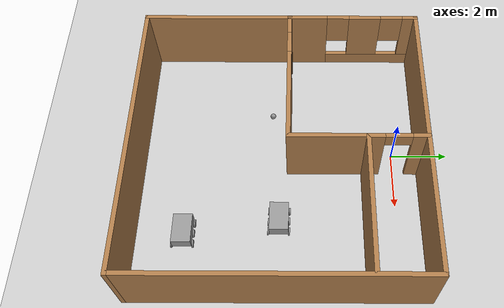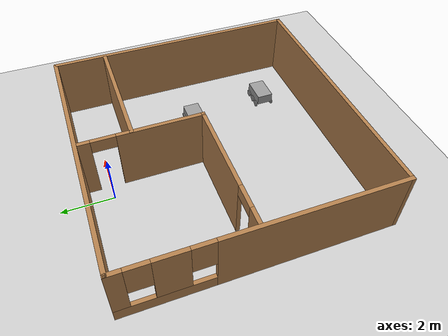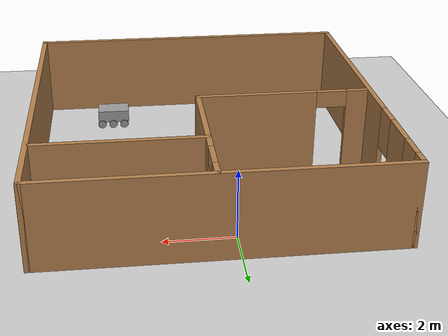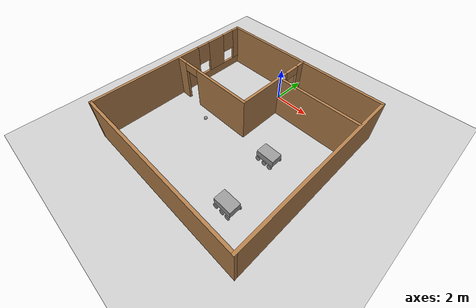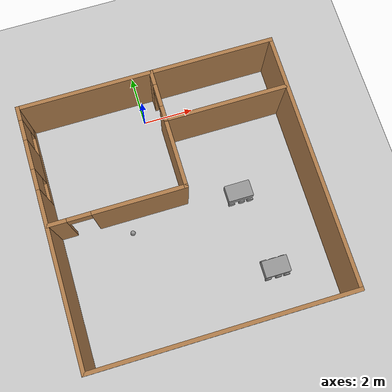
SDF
<sdf version="1.6">
 <world name="default">
  <plugin name="hello_world" filename="libhello_world.so"/>
  <light name="sun" type="directional">
   <pose>0 0 10 0 -0 0</pose>
   <diffuse>0.8 0.8 0.8 1</diffuse>
   <specular>0.2 0.2 0.2 1</specular>
   <attenuation>
    <range>1000</range>
    <constant>0.9</constant>
    <linear>0.01</linear>
    <quadratic>0.001</quadratic>
   </attenuation>
   <direction>-0.5 0.1 -0.9</direction>
  </light>
  <model name="ground_plane">
   <static>1</static>
   <link name="link">
    <collision name="collision">
     <geometry><plane><normal>0 0 1</normal><size>100 100</size></plane></geometry>
     <surface><friction><ode><mu>100</mu><mu2>50</mu2></ode></friction></surface>
    </collision>
    <visual name="visual">
     <cast_shadows>0</cast_shadows>
     <geometry><plane><normal>0 0 1</normal><size>100 100</size></plane></geometry>
     <material>
      <script><uri>file://media/materials/scripts/gazebo.material</uri><name>Gazebo/Grey</name></script>
     </material>
    </visual>
   </link>
  </model>
  <gravity>0 0 -9.8</gravity>
  <magnetic_field>6e-06 2.3e-05 -4.2e-05</magnetic_field>
  <atmosphere type="adiabatic"/>
  <physics name="default_physics" default="0" type="ode">
   <max_step_size>0.001</max_step_size>
   <real_time_factor>1</real_time_factor>
   <real_time_update_rate>1000</real_time_update_rate>
  </physics>
  <scene><ambient>0.4 0.4 0.4 1</ambient><background>0.7 0.7 0.7 1</background><shadows>1</shadows></scene>
  <spherical_coordinates>
   <surface_model>EARTH_WGS84</surface_model>
   <latitude_deg>0</latitude_deg>
   <longitude_deg>0</longitude_deg>
   <elevation>0</elevation>
   <heading_deg>0</heading_deg>
  </spherical_coordinates>
  <model name="Apt">
   <pose>0.449221 -4.00655 0 0 -0 0</pose>
   <link name="Wall_20">
    <collision name="Wall_20_Collision">
     <geometry><box><size>10 0.15 2.5</size></box></geometry>
     <pose>0 0 1.25 0 -0 0</pose>
    </collision>
    <visual name="Wall_20_Visual">
     <pose>0 0 1.25 0 -0 0</pose>
     <geometry><box><size>10 0.15 2.5</size></box></geometry>
     <material>
      <script><uri>file://media/materials/scripts/gazebo.material</uri><name>Gazebo/Wood</name></script>
      <ambient>1 1 1 1</ambient>
     </material>
     <meta><layer>0</layer></meta>
    </visual>
    <pose>0 4.925 0 0 -0 0</pose>
   </link>
   <link name="Wall_22">
    <collision name="Wall_22_Collision">
     <geometry><box><size>10 0.15 2.5</size></box></geometry>
     <pose>0 0 1.25 0 -0 0</pose>
    </collision>
    <visual name="Wall_22_Visual">
     <pose>0 0 1.25 0 -0 0</pose>
     <geometry><box><size>10 0.15 2.5</size></box></geometry>
     <material>
      <script><uri>file://media/materials/scripts/gazebo.material</uri><name>Gazebo/Wood</name></script>
      <ambient>1 1 1 1</ambient>
     </material>
     <meta><layer>0</layer></meta>
    </visual>
    <pose>4.925 0 0 0 0 -1.5708</pose>
   </link>
   <link name="Wall_23">
    <collision name="Wall_23_Collision">
     <geometry><box><size>10 0.15 2.5</size></box></geometry>
     <pose>0 0 1.25 0 -0 0</pose>
    </collision>
    <visual name="Wall_23_Visual">
     <pose>0 0 1.25 0 -0 0</pose>
     <geometry><box><size>10 0.15 2.5</size></box></geometry>
     <material>
      <script><uri>file://media/materials/scripts/gazebo.material</uri><name>Gazebo/Wood</name></script>
      <ambient>1 1 1 1</ambient>
     </material>
     <meta><layer>0</layer></meta>
    </visual>
    <pose>0 -4.925 0 0 -0 3.14159</pose>
   </link>
   <link name="Wall_24">
    <pose>-4.925 0 0 0 -0 1.5708</pose>
    <visual name="Wall_24_Visual_0">
     <pose>-1.65732 0 1.25 0 -0 0</pose>
     <geometry><box><size>6.68536 0.15 2.5</size></box></geometry>
     <material>
      <script><uri>file://media/materials/scripts/gazebo.material</uri><name>Gazebo/Wood</name></script>
      <ambient>1 1 1 1</ambient>
     </material>
     <meta><layer>0</layer></meta>
    </visual>
    <collision name="Wall_24_Collision_0">
     <geometry><box><size>6.68536 0.15 2.5</size></box></geometry>
     <pose>-1.65732 0 1.25 0 -0 0</pose>
    </collision>
    <visual name="Wall_24_Visual_1">
     <pose>3.34268 0 0.25 0 -0 0</pose>
     <geometry><box><size>3.31464 0.15 0.5</size></box></geometry>
     <material>
      <script><uri>file://media/materials/scripts/gazebo.material</uri><name>Gazebo/Wood</name></script>
      <ambient>1 1 1 1</ambient>
     </material>
     <meta><layer>0</layer></meta>
    </visual>
    <collision name="Wall_24_Collision_1">
     <geometry><box><size>3.31464 0.15 0.5</size></box></geometry>
     <pose>3.34268 0 0.25 0 -0 0</pose>
    </collision>
    <visual name="Wall_24_Visual_2">
     <pose>3.06322 0 1.5 0 -0 0</pose>
     <geometry><box><size>1.15572 0.15 2</size></box></geometry>
     <material>
      <script><uri>file://media/materials/scripts/gazebo.material</uri><name>Gazebo/Wood</name></script>
      <ambient>1 1 1 1</ambient>
     </material>
     <meta><layer>0</layer></meta>
    </visual>
    <collision name="Wall_24_Collision_2">
     <geometry><box><size>1.15572 0.15 2</size></box></geometry>
     <pose>3.06322 0 1.5 0 -0 0</pose>
    </collision>
    <visual name="Wall_24_Visual_3">
     <pose>4.72054 0 1.5 0 -0 0</pose>
     <geometry><box><size>0.558919 0.15 2</size></box></geometry>
     <material>
      <script><uri>file://media/materials/scripts/gazebo.material</uri><name>Gazebo/Wood</name></script>
      <ambient>1 1 1 1</ambient>
     </material>
     <meta><layer>0</layer></meta>
    </visual>
    <collision name="Wall_24_Collision_3">
     <geometry><box><size>0.558919 0.15 2</size></box></geometry>
     <pose>4.72054 0 1.5 0 -0 0</pose>
    </collision>
    <visual name="Wall_24_Visual_4">
     <pose>2.08536 0 1.9 0 -0 0</pose>
     <geometry><box><size>0.8 0.15 1.2</size></box></geometry>
     <material>
      <script><uri>file://media/materials/scripts/gazebo.material</uri><name>Gazebo/Wood</name></script>
      <ambient>1 1 1 1</ambient>
     </material>
     <meta><layer>0</layer></meta>
    </visual>
    <collision name="Wall_24_Collision_4">
     <geometry><box><size>0.8 0.15 1.2</size></box></geometry>
     <pose>2.08536 0 1.9 0 -0 0</pose>
    </collision>
    <visual name="Wall_24_Visual_5">
     <pose>4.04108 0 1.9 0 -0 0</pose>
     <geometry><box><size>0.8 0.15 1.2</size></box></geometry>
     <material>
      <script><uri>file://media/materials/scripts/gazebo.material</uri><name>Gazebo/Wood</name></script>
      <ambient>1 1 1 1</ambient>
     </material>
     <meta><layer>0</layer></meta>
    </visual>
    <collision name="Wall_24_Collision_5">
     <geometry><box><size>0.8 0.15 1.2</size></box></geometry>
     <pose>4.04108 0 1.9 0 -0 0</pose>
    </collision>
   </link>
   <link name="Wall_26">
    <pose>-2.34943 0.311558 0 0 -0 0</pose>
    <visual name="Wall_26_Visual_0">
     <pose>-2.24397 0 1.25 0 -0 0</pose>
     <geometry><box><size>0.76205 0.15 2.5</size></box></geometry>
     <material>
      <script><uri>file://media/materials/scripts/gazebo.material</uri><name>Gazebo/Wood</name></script>
      <ambient>1 1 1 1</ambient>
     </material>
     <meta><layer>0</layer></meta>
    </visual>
    <collision name="Wall_26_Collision_0">
     <geometry><box><size>0.76205 0.15 2.5</size></box></geometry>
     <pose>-2.24397 0 1.25 0 -0 0</pose>
    </collision>
    <visual name="Wall_26_Visual_1">
     <pose>0.831025 0 1.25 0 -0 0</pose>
     <geometry><box><size>3.58795 0.15 2.5</size></box></geometry>
     <material>
      <script><uri>file://media/materials/scripts/gazebo.material</uri><name>Gazebo/Wood</name></script>
      <ambient>1 1 1 1</ambient>
     </material>
     <meta><layer>0</layer></meta>
    </visual>
    <collision name="Wall_26_Collision_1">
     <geometry><box><size>3.58795 0.15 2.5</size></box></geometry>
     <pose>0.831025 0 1.25 0 -0 0</pose>
    </collision>
    <visual name="Wall_26_Visual_2">
     <pose>-1.41295 0 2.25 0 -0 0</pose>
     <geometry><box><size>0.9 0.15 0.5</size></box></geometry>
     <material>
      <script><uri>file://media/materials/scripts/gazebo.material</uri><name>Gazebo/Wood</name></script>
      <ambient>1 1 1 1</ambient>
     </material>
     <meta><layer>0</layer></meta>
    </visual>
    <collision name="Wall_26_Collision_2">
     <geometry><box><size>0.9 0.15 0.5</size></box></geometry>
     <pose>-1.41295 0 2.25 0 -0 0</pose>
    </collision>
   </link>
   <link name="Wall_27">
    <pose>0.200569 2.61156 0 0 -0 1.5708</pose>
    <visual name="Wall_27_Visual_0">
     <pose>-0.743221 0 1.25 0 -0 0</pose>
     <geometry><box><size>3.26356 0.15 2.5</size></box></geometry>
     <material>
      <script><uri>file://media/materials/scripts/gazebo.material</uri><name>Gazebo/Wood</name></script>
      <ambient>1 1 1 1</ambient>
     </material>
     <meta><layer>0</layer></meta>
    </visual>
    <collision name="Wall_27_Collision_0">
     <geometry><box><size>3.26356 0.15 2.5</size></box></geometry>
     <pose>-0.743221 0 1.25 0 -0 0</pose>
    </collision>
    <visual name="Wall_27_Visual_1">
     <pose>2.08178 0 1.25 0 -0 0</pose>
     <geometry><box><size>0.586441 0.15 2.5</size></box></geometry>
     <material>
      <script><uri>file://media/materials/scripts/gazebo.material</uri><name>Gazebo/Wood</name></script>
      <ambient>1 1 1 1</ambient>
     </material>
     <meta><layer>0</layer></meta>
    </visual>
    <collision name="Wall_27_Collision_1">
     <geometry><box><size>0.586441 0.15 2.5</size></box></geometry>
     <pose>2.08178 0 1.25 0 -0 0</pose>
    </collision>
    <visual name="Wall_27_Visual_2">
     <pose>1.33856 0 2.25 0 -0 0</pose>
     <geometry><box><size>0.9 0.15 0.5</size></box></geometry>
     <material>
      <script><uri>file://media/materials/scripts/gazebo.material</uri><name>Gazebo/Wood</name></script>
      <ambient>1 1 1 1</ambient>
     </material>
     <meta><layer>0</layer></meta>
    </visual>
    <collision name="Wall_27_Collision_2">
     <geometry><box><size>0.9 0.15 0.5</size></box></geometry>
     <pose>1.33856 0 2.25 0 -0 0</pose>
    </collision>
   </link>
   <link name="Wall_30">
    <collision name="Wall_30_Collision">
     <geometry><box><size>4.75 0.15 2.5</size></box></geometry>
     <pose>0 0 1.25 0 -0 0</pose>
    </collision>
    <visual name="Wall_30_Visual">
     <pose>0 0 1.25 0 -0 0</pose>
     <geometry><box><size>4.75 0.15 2.5</size></box></geometry>
     <material>
      <script><uri>file://media/materials/scripts/gazebo.material</uri><name>Gazebo/Wood</name></script>
      <ambient>1 1 1 1</ambient>
     </material>
     <meta><layer>0</layer></meta>
    </visual>
    <pose>2.51729 2.94951 0 0 -0 0</pose>
   </link>
   <static>1</static>
  </model>
  <light name="user_point_light_0" type="point">
   <pose>0.679796 -6.52012 1 0 -0 0</pose>
   <diffuse>0.5 0.5 0.5 1</diffuse>
   <specular>0.1 0.1 0.1 1</specular>
   <attenuation>
    <range>20</range>
    <constant>0.5</constant>
    <linear>0.01</linear>
    <quadratic>0.001</quadratic>
   </attenuation>
   <cast_shadows>0</cast_shadows>
   <direction>0 0 -1</direction>
  </light>
  <light name="user_point_light_1" type="point">
   <pose>-1.72336 -0.833367 1 0 -0 0</pose>
   <diffuse>0.5 0.5 0.5 1</diffuse>
   <specular>0.1 0.1 0.1 1</specular>
   <attenuation>
    <range>20</range>
    <constant>0.5</constant>
    <linear>0.01</linear>
    <quadratic>0.001</quadratic>
   </attenuation>
   <cast_shadows>0</cast_shadows>
   <direction>0 0 -1</direction>
  </light>
  <light name="user_point_light_2" type="point">
   <pose>-1.84917 -6.47045 1 0 -0 0</pose>
   <diffuse>0.5 0.5 0.5 1</diffuse>
   <specular>0.1 0.1 0.1 1</specular>
   <attenuation>
    <range>20</range>
    <constant>0.5</constant>
    <linear>0.01</linear>
    <quadratic>0.001</quadratic>
   </attenuation>
   <cast_shadows>0</cast_shadows>
   <direction>0 0 -1</direction>
  </light>
  <model name="unit_box">
   <link name="link">
    <pose>0.003005 -0.0022 0.213305 0 -0 0</pose>
    <inertial>
     <mass>1</mass>
     <inertia>
      <ixx>0.166667</ixx>
      <ixy>0</ixy>
      <ixz>0</ixz>
      <iyy>0.166667</iyy>
      <iyz>0</iyz>
      <izz>0.166667</izz>
     </inertia>
    </inertial>
    <kinematic>1</kinematic>
    <visual name="visual">
     <geometry><box><size>1 0.643539 0.38715</size></box></geometry>
     <material>
      <script><name>Gazebo/Grey</name><uri>file://media/materials/scripts/gazebo.material</uri></script>
      <ambient>0.3 0.3 0.3 1</ambient>
      <diffuse>0.7 0.7 0.7 1</diffuse>
      <specular>0.01 0.01 0.01 1</specular>
      <emissive>0 0 0 1</emissive>
      <shader type="vertex"><normal_map>__default__</normal_map></shader>
     </material>
    </visual>
    <collision name="collision">
     <geometry><box><size>1 0.643539 0.38715</size></box></geometry>
     <surface>
      <friction>
       <ode><mu>1</mu><mu2>1</mu2><fdir1>0 0 0</fdir1><slip1>0</slip1><slip2>0</slip2></ode>
       <torsional>
        <coefficient>1</coefficient>
        <patch_radius>0</patch_radius>
        <surface_radius>0</surface_radius>
        <use_patch_radius>1</use_patch_radius>
        <ode><slip>0</slip></ode>
       </torsional>
      </friction>
      <bounce><restitution_coefficient>0</restitution_coefficient><threshold>1e+06</threshold></bounce>
      <contact>
       <collide_without_contact>0</collide_without_contact>
       <collide_without_contact_bitmask>1</collide_without_contact_bitmask>
       <collide_bitmask>1</collide_bitmask>
       <ode>
        <soft_cfm>0</soft_cfm>
        <soft_erp>0.2</soft_erp>
        <kp>1e+13</kp>
        <kd>1</kd>
        <max_vel>0.01</max_vel>
        <min_depth>0</min_depth>
       </ode>
       <bullet>
        <split_impulse>1</split_impulse>
        <split_impulse_penetration_threshold>-0.01</split_impulse_penetration_threshold>
        <soft_cfm>0</soft_cfm>
        <soft_erp>0.2</soft_erp>
        <kp>1e+13</kp>
        <kd>1</kd>
       </bullet>
      </contact>
     </surface>
    </collision>
   </link>
   <link name="link_0">
    <pose>-0.365803 -0.352907 -0.058315 1.51855 -0 0</pose>
    <inertial>
     <mass>0.00343646</mass>
     <inertia>
      <ixx>1.61233e-05</ixx>
      <ixy>0</ixy>
      <ixz>0</ixz>
      <iyy>1.61233e-05</iyy>
      <iyz>0</iyz>
      <izz>3.09431e-05</izz>
     </inertia>
    </inertial>
    <visual name="visual">
     <geometry><cylinder><radius>0.134197</radius><length>0.0477179</length></cylinder></geometry>
     <material>
      <lighting>1</lighting>
      <script><uri>file://media/materials/scripts/gazebo.material</uri><name>Gazebo/Grey</name></script>
      <ambient>0.3 0.3 0.3 1</ambient>
      <diffuse>0.7 0.7 0.7 1</diffuse>
      <specular>0.01 0.01 0.01 1</specular>
      <emissive>0 0 0 1</emissive>
      <shader type="vertex"><normal_map>__default__</normal_map></shader>
     </material>
    </visual>
    <collision name="collision">
     <geometry><cylinder><radius>0.134197</radius><length>0.047718</length></cylinder></geometry>
     <surface>
      <friction>
       <ode><mu>1</mu><mu2>1</mu2><fdir1>0 0 0</fdir1><slip1>0</slip1><slip2>0</slip2></ode>
       <torsional>
        <coefficient>1</coefficient>
        <patch_radius>0</patch_radius>
        <surface_radius>0</surface_radius>
        <use_patch_radius>1</use_patch_radius>
        <ode><slip>0</slip></ode>
       </torsional>
      </friction>
      <bounce><restitution_coefficient>0</restitution_coefficient><threshold>1e+06</threshold></bounce>
      <contact>
       <collide_without_contact>0</collide_without_contact>
       <collide_without_contact_bitmask>1</collide_without_contact_bitmask>
       <collide_bitmask>1</collide_bitmask>
       <ode>
        <soft_cfm>0</soft_cfm>
        <soft_erp>0.2</soft_erp>
        <kp>1e+13</kp>
        <kd>1</kd>
        <max_vel>0.01</max_vel>
        <min_depth>0</min_depth>
       </ode>
       <bullet>
        <split_impulse>1</split_impulse>
        <split_impulse_penetration_threshold>-0.01</split_impulse_penetration_threshold>
        <soft_cfm>0</soft_cfm>
        <soft_erp>0.2</soft_erp>
        <kp>1e+13</kp>
        <kd>1</kd>
       </bullet>
      </contact>
     </surface>
    </collision>
   </link>
   <link name="link_0_clone">
    <pose>0.373944 -0.367216 -0.055993 1.51855 -0 0</pose>
    <inertial>
     <mass>0.00343646</mass>
     <inertia>
      <ixx>1.61233e-05</ixx>
      <ixy>0</ixy>
      <ixz>0</ixz>
      <iyy>1.61233e-05</iyy>
      <iyz>0</iyz>
      <izz>3.09431e-05</izz>
     </inertia>
    </inertial>
    <visual name="visual">
     <geometry><cylinder><radius>0.134197</radius><length>0.0477179</length></cylinder></geometry>
     <material>
      <lighting>1</lighting>
      <script><uri>file://media/materials/scripts/gazebo.material</uri><name>Gazebo/Grey</name></script>
      <ambient>0.3 0.3 0.3 1</ambient>
      <diffuse>0.7 0.7 0.7 1</diffuse>
      <specular>0.01 0.01 0.01 1</specular>
      <emissive>0 0 0 1</emissive>
      <shader type="vertex"><normal_map>__default__</normal_map></shader>
     </material>
    </visual>
    <collision name="collision">
     <geometry><cylinder><radius>0.134197</radius><length>0.047718</length></cylinder></geometry>
     <surface>
      <friction>
       <ode><mu>1</mu><mu2>1</mu2><fdir1>0 0 0</fdir1><slip1>0</slip1><slip2>0</slip2></ode>
       <torsional>
        <coefficient>1</coefficient>
        <patch_radius>0</patch_radius>
        <surface_radius>0</surface_radius>
        <use_patch_radius>1</use_patch_radius>
        <ode><slip>0</slip></ode>
       </torsional>
      </friction>
      <bounce><restitution_coefficient>0</restitution_coefficient><threshold>1e+06</threshold></bounce>
      <contact>
       <collide_without_contact>0</collide_without_contact>
       <collide_without_contact_bitmask>1</collide_without_contact_bitmask>
       <collide_bitmask>1</collide_bitmask>
       <ode>
        <soft_cfm>0</soft_cfm>
        <soft_erp>0.2</soft_erp>
        <kp>1e+13</kp>
        <kd>1</kd>
        <max_vel>0.01</max_vel>
        <min_depth>0</min_depth>
       </ode>
       <bullet>
        <split_impulse>1</split_impulse>
        <split_impulse_penetration_threshold>-0.01</split_impulse_penetration_threshold>
        <soft_cfm>0</soft_cfm>
        <soft_erp>0.2</soft_erp>
        <kp>1e+13</kp>
        <kd>1</kd>
       </bullet>
      </contact>
     </surface>
    </collision>
   </link>
   <link name="link_0_clone_0">
    <pose>0.040573 -0.361578 -0.056617 1.51855 -0 0</pose>
    <inertial>
     <mass>0.00343646</mass>
     <inertia>
      <ixx>1.61233e-05</ixx>
      <ixy>0</ixy>
      <ixz>0</ixz>
      <iyy>1.61233e-05</iyy>
      <iyz>0</iyz>
      <izz>3.09431e-05</izz>
     </inertia>
    </inertial>
    <visual name="visual">
     <geometry><cylinder><radius>0.134197</radius><length>0.0477179</length></cylinder></geometry>
     <material>
      <lighting>1</lighting>
      <script><uri>file://media/materials/scripts/gazebo.material</uri><name>Gazebo/Grey</name></script>
      <ambient>0.3 0.3 0.3 1</ambient>
      <diffuse>0.7 0.7 0.7 1</diffuse>
      <specular>0.01 0.01 0.01 1</specular>
      <emissive>0 0 0 1</emissive>
      <shader type="vertex"><normal_map>__default__</normal_map></shader>
     </material>
    </visual>
    <collision name="collision">
     <geometry><cylinder><radius>0.134197</radius><length>0.047718</length></cylinder></geometry>
     <surface>
      <friction>
       <ode><mu>1</mu><mu2>1</mu2><fdir1>0 0 0</fdir1><slip1>0</slip1><slip2>0</slip2></ode>
       <torsional>
        <coefficient>1</coefficient>
        <patch_radius>0</patch_radius>
        <surface_radius>0</surface_radius>
        <use_patch_radius>1</use_patch_radius>
        <ode><slip>0</slip></ode>
       </torsional>
      </friction>
      <bounce><restitution_coefficient>0</restitution_coefficient><threshold>1e+06</threshold></bounce>
      <contact>
       <collide_without_contact>0</collide_without_contact>
       <collide_without_contact_bitmask>1</collide_without_contact_bitmask>
       <collide_bitmask>1</collide_bitmask>
       <ode>
        <soft_cfm>0</soft_cfm>
        <soft_erp>0.2</soft_erp>
        <kp>1e+13</kp>
        <kd>1</kd>
        <max_vel>0.01</max_vel>
        <min_depth>0</min_depth>
       </ode>
       <bullet>
        <split_impulse>1</split_impulse>
        <split_impulse_penetration_threshold>-0.01</split_impulse_penetration_threshold>
        <soft_cfm>0</soft_cfm>
        <soft_erp>0.2</soft_erp>
        <kp>1e+13</kp>
        <kd>1</kd>
       </bullet>
      </contact>
     </surface>
    </collision>
   </link>
   <link name="link_0_clone_1">
    <pose>0.386175 0.338935 -0.037961 1.51855 -0 0</pose>
    <inertial>
     <mass>0.00343646</mass>
     <inertia>
      <ixx>1.61233e-05</ixx>
      <ixy>0</ixy>
      <ixz>0</ixz>
      <iyy>1.61233e-05</iyy>
      <iyz>0</iyz>
      <izz>3.09431e-05</izz>
     </inertia>
    </inertial>
    <visual name="visual">
     <geometry><cylinder><radius>0.134197</radius><length>0.0477179</length></cylinder></geometry>
     <material>
      <lighting>1</lighting>
      <script><uri>file://media/materials/scripts/gazebo.material</uri><name>Gazebo/Grey</name></script>
      <ambient>0.3 0.3 0.3 1</ambient>
      <diffuse>0.7 0.7 0.7 1</diffuse>
      <specular>0.01 0.01 0.01 1</specular>
      <emissive>0 0 0 1</emissive>
      <shader type="vertex"><normal_map>__default__</normal_map></shader>
     </material>
    </visual>
    <collision name="collision">
     <geometry><cylinder><radius>0.134197</radius><length>0.047718</length></cylinder></geometry>
     <surface>
      <friction>
       <ode><mu>1</mu><mu2>1</mu2><fdir1>0 0 0</fdir1><slip1>0</slip1><slip2>0</slip2></ode>
       <torsional>
        <coefficient>1</coefficient>
        <patch_radius>0</patch_radius>
        <surface_radius>0</surface_radius>
        <use_patch_radius>1</use_patch_radius>
        <ode><slip>0</slip></ode>
       </torsional>
      </friction>
      <bounce><restitution_coefficient>0</restitution_coefficient><threshold>1e+06</threshold></bounce>
      <contact>
       <collide_without_contact>0</collide_without_contact>
       <collide_without_contact_bitmask>1</collide_without_contact_bitmask>
       <collide_bitmask>1</collide_bitmask>
       <ode>
        <soft_cfm>0</soft_cfm>
        <soft_erp>0.2</soft_erp>
        <kp>1e+13</kp>
        <kd>1</kd>
        <max_vel>0.01</max_vel>
        <min_depth>0</min_depth>
       </ode>
       <bullet>
        <split_impulse>1</split_impulse>
        <split_impulse_penetration_threshold>-0.01</split_impulse_penetration_threshold>
        <soft_cfm>0</soft_cfm>
        <soft_erp>0.2</soft_erp>
        <kp>1e+13</kp>
        <kd>1</kd>
       </bullet>
      </contact>
     </surface>
    </collision>
   </link>
   <link name="link_0_clone_2">
    <pose>0.020372 0.338679 -0.042863 1.51855 -0 0</pose>
    <inertial>
     <mass>0.00343646</mass>
     <inertia>
      <ixx>1.61233e-05</ixx>
      <ixy>0</ixy>
      <ixz>0</ixz>
      <iyy>1.61233e-05</iyy>
      <iyz>0</iyz>
      <izz>3.09431e-05</izz>
     </inertia>
    </inertial>
    <visual name="visual">
     <geometry><cylinder><radius>0.134197</radius><length>0.0477179</length></cylinder></geometry>
     <material>
      <lighting>1</lighting>
      <script><uri>file://media/materials/scripts/gazebo.material</uri><name>Gazebo/Grey</name></script>
      <ambient>0.3 0.3 0.3 1</ambient>
      <diffuse>0.7 0.7 0.7 1</diffuse>
      <specular>0.01 0.01 0.01 1</specular>
      <emissive>0 0 0 1</emissive>
      <shader type="vertex"><normal_map>__default__</normal_map></shader>
     </material>
    </visual>
    <collision name="collision">
     <geometry><cylinder><radius>0.134197</radius><length>0.047718</length></cylinder></geometry>
     <surface>
      <friction>
       <ode><mu>1</mu><mu2>1</mu2><fdir1>0 0 0</fdir1><slip1>0</slip1><slip2>0</slip2></ode>
       <torsional>
        <coefficient>1</coefficient>
        <patch_radius>0</patch_radius>
        <surface_radius>0</surface_radius>
        <use_patch_radius>1</use_patch_radius>
        <ode><slip>0</slip></ode>
       </torsional>
      </friction>
      <bounce><restitution_coefficient>0</restitution_coefficient><threshold>1e+06</threshold></bounce>
      <contact>
       <collide_without_contact>0</collide_without_contact>
       <collide_without_contact_bitmask>1</collide_without_contact_bitmask>
       <collide_bitmask>1</collide_bitmask>
       <ode>
        <soft_cfm>0</soft_cfm>
        <soft_erp>0.2</soft_erp>
        <kp>1e+13</kp>
        <kd>1</kd>
        <max_vel>0.01</max_vel>
        <min_depth>0</min_depth>
       </ode>
       <bullet>
        <split_impulse>1</split_impulse>
        <split_impulse_penetration_threshold>-0.01</split_impulse_penetration_threshold>
        <soft_cfm>0</soft_cfm>
        <soft_erp>0.2</soft_erp>
        <kp>1e+13</kp>
        <kd>1</kd>
       </bullet>
      </contact>
     </surface>
    </collision>
   </link>
   <link name="link_0_clone_3">
    <pose>-0.340099 0.35048 -0.038427 1.51855 -0 0</pose>
    <inertial>
     <mass>0.00343646</mass>
     <inertia>
      <ixx>1.61233e-05</ixx>
      <ixy>0</ixy>
      <ixz>0</ixz>
      <iyy>1.61233e-05</iyy>
      <iyz>0</iyz>
      <izz>3.09431e-05</izz>
     </inertia>
    </inertial>
    <visual name="visual">
     <geometry><cylinder><radius>0.134197</radius><length>0.0477179</length></cylinder></geometry>
     <material>
      <lighting>1</lighting>
      <script><uri>file://media/materials/scripts/gazebo.material</uri><name>Gazebo/Grey</name></script>
      <ambient>0.3 0.3 0.3 1</ambient>
      <diffuse>0.7 0.7 0.7 1</diffuse>
      <specular>0.01 0.01 0.01 1</specular>
      <emissive>0 0 0 1</emissive>
      <shader type="vertex"><normal_map>__default__</normal_map></shader>
     </material>
    </visual>
    <collision name="collision">
     <geometry><cylinder><radius>0.134197</radius><length>0.047718</length></cylinder></geometry>
     <surface>
      <friction>
       <ode><mu>1</mu><mu2>1</mu2><fdir1>0 0 0</fdir1><slip1>0</slip1><slip2>0</slip2></ode>
       <torsional>
        <coefficient>1</coefficient>
        <patch_radius>0</patch_radius>
        <surface_radius>0</surface_radius>
        <use_patch_radius>1</use_patch_radius>
        <ode><slip>0</slip></ode>
       </torsional>
      </friction>
      <bounce><restitution_coefficient>0</restitution_coefficient><threshold>1e+06</threshold></bounce>
      <contact>
       <collide_without_contact>0</collide_without_contact>
       <collide_without_contact_bitmask>1</collide_without_contact_bitmask>
       <collide_bitmask>1</collide_bitmask>
       <ode>
        <soft_cfm>0</soft_cfm>
        <soft_erp>0.2</soft_erp>
        <kp>1e+13</kp>
        <kd>1</kd>
        <max_vel>0.01</max_vel>
        <min_depth>0</min_depth>
       </ode>
       <bullet>
        <split_impulse>1</split_impulse>
        <split_impulse_penetration_threshold>-0.01</split_impulse_penetration_threshold>
        <soft_cfm>0</soft_cfm>
        <soft_erp>0.2</soft_erp>
        <kp>1e+13</kp>
        <kd>1</kd>
       </bullet>
      </contact>
     </surface>
    </collision>
   </link>
   <joint name="link_JOINT_0" type="revolute">
    <parent>link</parent>
    <child>link_0</child>
    <pose>0 0 0.33 0 -0 0</pose>
    <axis>
     <xyz>0 0 -0.5</xyz>
     <use_parent_model_frame>0</use_parent_model_frame>
     <limit>
      <lower>-1.79769e+308</lower>
      <upper>1.79769e+308</upper>
      <effort>-1</effort>
      <velocity>-1</velocity>
     </limit>
     <dynamics>
      <spring_reference>0</spring_reference>
      <spring_stiffness>0</spring_stiffness>
      <damping>0</damping>
      <friction>0</friction>
     </dynamics>
    </axis>
    <physics>
     <ode><limit><cfm>0</cfm><erp>0.2</erp></limit><suspension><cfm>0</cfm><erp>0.2</erp></suspension></ode>
    </physics>
   </joint>
   <joint name="link_JOINT_1" type="revolute">
    <parent>link</parent>
    <child>link_0_clone</child>
    <axis>
     <xyz>0 0 -1</xyz>
     <use_parent_model_frame>0</use_parent_model_frame>
     <limit>
      <lower>-1.79769e+308</lower>
      <upper>1.79769e+308</upper>
      <effort>-1</effort>
      <velocity>-1</velocity>
     </limit>
     <dynamics>
      <spring_reference>0</spring_reference>
      <spring_stiffness>0</spring_stiffness>
      <damping>0</damping>
      <friction>0</friction>
     </dynamics>
    </axis>
    <physics>
     <ode><limit><cfm>0</cfm><erp>0.2</erp></limit><suspension><cfm>0</cfm><erp>0.2</erp></suspension></ode>
    </physics>
   </joint>
   <joint name="link_JOINT_2" type="revolute">
    <parent>link</parent>
    <child>link_0_clone_0</child>
    <axis>
     <xyz>0 0 -1</xyz>
     <use_parent_model_frame>0</use_parent_model_frame>
     <limit>
      <lower>-1.79769e+308</lower>
      <upper>1.79769e+308</upper>
      <effort>-1</effort>
      <velocity>-1</velocity>
     </limit>
     <dynamics>
      <spring_reference>0</spring_reference>
      <spring_stiffness>0</spring_stiffness>
      <damping>0</damping>
      <friction>0</friction>
     </dynamics>
    </axis>
    <physics>
     <ode><limit><cfm>0</cfm><erp>0.2</erp></limit><suspension><cfm>0</cfm><erp>0.2</erp></suspension></ode>
    </physics>
   </joint>
   <joint name="link_JOINT_3" type="revolute">
    <parent>link</parent>
    <child>link_0_clone_1</child>
    <axis>
     <xyz>0 0 1</xyz>
     <use_parent_model_frame>0</use_parent_model_frame>
     <limit>
      <lower>-1.79769e+308</lower>
      <upper>1.79769e+308</upper>
      <effort>-1</effort>
      <velocity>-1</velocity>
     </limit>
     <dynamics>
      <spring_reference>0</spring_reference>
      <spring_stiffness>0</spring_stiffness>
      <damping>0</damping>
      <friction>0</friction>
     </dynamics>
    </axis>
    <physics>
     <ode><limit><cfm>0</cfm><erp>0.2</erp></limit><suspension><cfm>0</cfm><erp>0.2</erp></suspension></ode>
    </physics>
   </joint>
   <joint name="link_JOINT_4" type="revolute">
    <parent>link</parent>
    <child>link_0_clone_2</child>
    <axis>
     <xyz>0 0 -1</xyz>
     <use_parent_model_frame>0</use_parent_model_frame>
     <limit>
      <lower>-1.79769e+308</lower>
      <upper>1.79769e+308</upper>
      <effort>-1</effort>
      <velocity>-1</velocity>
     </limit>
     <dynamics>
      <spring_reference>0</spring_reference>
      <spring_stiffness>0</spring_stiffness>
      <damping>0</damping>
      <friction>0</friction>
     </dynamics>
    </axis>
    <physics>
     <ode><limit><cfm>0</cfm><erp>0.2</erp></limit><suspension><cfm>0</cfm><erp>0.2</erp></suspension></ode>
    </physics>
   </joint>
   <joint name="link_JOINT_5" type="revolute">
    <parent>link</parent>
    <child>link_0_clone_3</child>
    <axis>
     <xyz>0 0 1</xyz>
     <use_parent_model_frame>0</use_parent_model_frame>
     <limit>
      <lower>-1.79769e+308</lower>
      <upper>1.79769e+308</upper>
      <effort>-1</effort>
      <velocity>-1</velocity>
     </limit>
     <dynamics>
      <spring_reference>0</spring_reference>
      <spring_stiffness>0</spring_stiffness>
      <damping>0</damping>
      <friction>0</friction>
     </dynamics>
    </axis>
    <physics>
     <ode><limit><cfm>0</cfm><erp>0.2</erp></limit><suspension><cfm>0</cfm><erp>0.2</erp></suspension></ode>
    </physics>
   </joint>
   <static>0</static>
   <pose>2.69801 -3.99846 0.311659 0 -0 0</pose>
  </model>
  <model name="unit_box_clone">
   <link name="link">
    <pose>0.003005 -0.0022 0.213305 0 -0 0</pose>
    <inertial>
     <mass>1</mass>
     <inertia>
      <ixx>0.166667</ixx>
      <ixy>0</ixy>
      <ixz>0</ixz>
      <iyy>0.166667</iyy>
      <iyz>0</iyz>
      <izz>0.166667</izz>
     </inertia>
    </inertial>
    <kinematic>1</kinematic>
    <visual name="visual">
     <geometry><box><size>1 0.643539 0.38715</size></box></geometry>
     <material>
      <script><name>Gazebo/Grey</name><uri>file://media/materials/scripts/gazebo.material</uri></script>
      <ambient>0.3 0.3 0.3 1</ambient>
      <diffuse>0.7 0.7 0.7 1</diffuse>
      <specular>0.01 0.01 0.01 1</specular>
      <emissive>0 0 0 1</emissive>
      <shader type="vertex"><normal_map>__default__</normal_map></shader>
     </material>
    </visual>
    <collision name="collision">
     <geometry><box><size>1 0.643539 0.38715</size></box></geometry>
     <surface>
      <friction>
       <ode><mu>1</mu><mu2>1</mu2><fdir1>0 0 0</fdir1><slip1>0</slip1><slip2>0</slip2></ode>
       <torsional>
        <coefficient>1</coefficient>
        <patch_radius>0</patch_radius>
        <surface_radius>0</surface_radius>
        <use_patch_radius>1</use_patch_radius>
        <ode><slip>0</slip></ode>
       </torsional>
      </friction>
      <bounce><restitution_coefficient>0</restitution_coefficient><threshold>1e+06</threshold></bounce>
      <contact>
       <collide_without_contact>0</collide_without_contact>
       <collide_without_contact_bitmask>1</collide_without_contact_bitmask>
       <collide_bitmask>1</collide_bitmask>
       <ode>
        <soft_cfm>0</soft_cfm>
        <soft_erp>0.2</soft_erp>
        <kp>1e+13</kp>
        <kd>1</kd>
        <max_vel>0.01</max_vel>
        <min_depth>0</min_depth>
       </ode>
       <bullet>
        <split_impulse>1</split_impulse>
        <split_impulse_penetration_threshold>-0.01</split_impulse_penetration_threshold>
        <soft_cfm>0</soft_cfm>
        <soft_erp>0.2</soft_erp>
        <kp>1e+13</kp>
        <kd>1</kd>
       </bullet>
      </contact>
     </surface>
    </collision>
   </link>
   <link name="link_0">
    <pose>-0.365803 -0.352907 -0.058315 1.51855 -0 0</pose>
    <inertial>
     <mass>0.00343646</mass>
     <inertia>
      <ixx>1.61233e-05</ixx>
      <ixy>0</ixy>
      <ixz>0</ixz>
      <iyy>1.61233e-05</iyy>
      <iyz>0</iyz>
      <izz>3.09431e-05</izz>
     </inertia>
    </inertial>
    <visual name="visual">
     <geometry><cylinder><radius>0.134197</radius><length>0.0477179</length></cylinder></geometry>
     <material>
      <lighting>1</lighting>
      <script><uri>file://media/materials/scripts/gazebo.material</uri><name>Gazebo/Grey</name></script>
      <ambient>0.3 0.3 0.3 1</ambient>
      <diffuse>0.7 0.7 0.7 1</diffuse>
      <specular>0.01 0.01 0.01 1</specular>
      <emissive>0 0 0 1</emissive>
      <shader type="vertex"><normal_map>__default__</normal_map></shader>
     </material>
    </visual>
    <collision name="collision">
     <geometry><cylinder><radius>0.134197</radius><length>0.047718</length></cylinder></geometry>
     <surface>
      <friction>
       <ode><mu>1</mu><mu2>1</mu2><fdir1>0 0 0</fdir1><slip1>0</slip1><slip2>0</slip2></ode>
       <torsional>
        <coefficient>1</coefficient>
        <patch_radius>0</patch_radius>
        <surface_radius>0</surface_radius>
        <use_patch_radius>1</use_patch_radius>
        <ode><slip>0</slip></ode>
       </torsional>
      </friction>
      <bounce><restitution_coefficient>0</restitution_coefficient><threshold>1e+06</threshold></bounce>
      <contact>
       <collide_without_contact>0</collide_without_contact>
       <collide_without_contact_bitmask>1</collide_without_contact_bitmask>
       <collide_bitmask>1</collide_bitmask>
       <ode>
        <soft_cfm>0</soft_cfm>
        <soft_erp>0.2</soft_erp>
        <kp>1e+13</kp>
        <kd>1</kd>
        <max_vel>0.01</max_vel>
        <min_depth>0</min_depth>
       </ode>
       <bullet>
        <split_impulse>1</split_impulse>
        <split_impulse_penetration_threshold>-0.01</split_impulse_penetration_threshold>
        <soft_cfm>0</soft_cfm>
        <soft_erp>0.2</soft_erp>
        <kp>1e+13</kp>
        <kd>1</kd>
       </bullet>
      </contact>
     </surface>
    </collision>
   </link>
   <link name="link_0_clone">
    <pose>0.373944 -0.367216 -0.055993 1.51855 -0 0</pose>
    <inertial>
     <mass>0.00343646</mass>
     <inertia>
      <ixx>1.61233e-05</ixx>
      <ixy>0</ixy>
      <ixz>0</ixz>
      <iyy>1.61233e-05</iyy>
      <iyz>0</iyz>
      <izz>3.09431e-05</izz>
     </inertia>
    </inertial>
    <visual name="visual">
     <geometry><cylinder><radius>0.134197</radius><length>0.0477179</length></cylinder></geometry>
     <material>
      <lighting>1</lighting>
      <script><uri>file://media/materials/scripts/gazebo.material</uri><name>Gazebo/Grey</name></script>
      <ambient>0.3 0.3 0.3 1</ambient>
      <diffuse>0.7 0.7 0.7 1</diffuse>
      <specular>0.01 0.01 0.01 1</specular>
      <emissive>0 0 0 1</emissive>
      <shader type="vertex"><normal_map>__default__</normal_map></shader>
     </material>
    </visual>
    <collision name="collision">
     <geometry><cylinder><radius>0.134197</radius><length>0.047718</length></cylinder></geometry>
     <surface>
      <friction>
       <ode><mu>1</mu><mu2>1</mu2><fdir1>0 0 0</fdir1><slip1>0</slip1><slip2>0</slip2></ode>
       <torsional>
        <coefficient>1</coefficient>
        <patch_radius>0</patch_radius>
        <surface_radius>0</surface_radius>
        <use_patch_radius>1</use_patch_radius>
        <ode><slip>0</slip></ode>
       </torsional>
      </friction>
      <bounce><restitution_coefficient>0</restitution_coefficient><threshold>1e+06</threshold></bounce>
      <contact>
       <collide_without_contact>0</collide_without_contact>
       <collide_without_contact_bitmask>1</collide_without_contact_bitmask>
       <collide_bitmask>1</collide_bitmask>
       <ode>
        <soft_cfm>0</soft_cfm>
        <soft_erp>0.2</soft_erp>
        <kp>1e+13</kp>
        <kd>1</kd>
        <max_vel>0.01</max_vel>
        <min_depth>0</min_depth>
       </ode>
       <bullet>
        <split_impulse>1</split_impulse>
        <split_impulse_penetration_threshold>-0.01</split_impulse_penetration_threshold>
        <soft_cfm>0</soft_cfm>
        <soft_erp>0.2</soft_erp>
        <kp>1e+13</kp>
        <kd>1</kd>
       </bullet>
      </contact>
     </surface>
    </collision>
   </link>
   <link name="link_0_clone_0">
    <pose>0.040573 -0.361578 -0.056617 1.51855 -0 0</pose>
    <inertial>
     <mass>0.00343646</mass>
     <inertia>
      <ixx>1.61233e-05</ixx>
      <ixy>0</ixy>
      <ixz>0</ixz>
      <iyy>1.61233e-05</iyy>
      <iyz>0</iyz>
      <izz>3.09431e-05</izz>
     </inertia>
    </inertial>
    <visual name="visual">
     <geometry><cylinder><radius>0.134197</radius><length>0.0477179</length></cylinder></geometry>
     <material>
      <lighting>1</lighting>
      <script><uri>file://media/materials/scripts/gazebo.material</uri><name>Gazebo/Grey</name></script>
      <ambient>0.3 0.3 0.3 1</ambient>
      <diffuse>0.7 0.7 0.7 1</diffuse>
      <specular>0.01 0.01 0.01 1</specular>
      <emissive>0 0 0 1</emissive>
      <shader type="vertex"><normal_map>__default__</normal_map></shader>
     </material>
    </visual>
    <collision name="collision">
     <geometry><cylinder><radius>0.134197</radius><length>0.047718</length></cylinder></geometry>
     <surface>
      <friction>
       <ode><mu>1</mu><mu2>1</mu2><fdir1>0 0 0</fdir1><slip1>0</slip1><slip2>0</slip2></ode>
       <torsional>
        <coefficient>1</coefficient>
        <patch_radius>0</patch_radius>
        <surface_radius>0</surface_radius>
        <use_patch_radius>1</use_patch_radius>
        <ode><slip>0</slip></ode>
       </torsional>
      </friction>
      <bounce><restitution_coefficient>0</restitution_coefficient><threshold>1e+06</threshold></bounce>
      <contact>
       <collide_without_contact>0</collide_without_contact>
       <collide_without_contact_bitmask>1</collide_without_contact_bitmask>
       <collide_bitmask>1</collide_bitmask>
       <ode>
        <soft_cfm>0</soft_cfm>
        <soft_erp>0.2</soft_erp>
        <kp>1e+13</kp>
        <kd>1</kd>
        <max_vel>0.01</max_vel>
        <min_depth>0</min_depth>
       </ode>
       <bullet>
        <split_impulse>1</split_impulse>
        <split_impulse_penetration_threshold>-0.01</split_impulse_penetration_threshold>
        <soft_cfm>0</soft_cfm>
        <soft_erp>0.2</soft_erp>
        <kp>1e+13</kp>
        <kd>1</kd>
       </bullet>
      </contact>
     </surface>
    </collision>
   </link>
   <link name="link_0_clone_1">
    <pose>0.386175 0.338935 -0.037961 1.51855 -0 0</pose>
    <inertial>
     <mass>0.00343646</mass>
     <inertia>
      <ixx>1.61233e-05</ixx>
      <ixy>0</ixy>
      <ixz>0</ixz>
      <iyy>1.61233e-05</iyy>
      <iyz>0</iyz>
      <izz>3.09431e-05</izz>
     </inertia>
    </inertial>
    <visual name="visual">
     <geometry><cylinder><radius>0.134197</radius><length>0.0477179</length></cylinder></geometry>
     <material>
      <lighting>1</lighting>
      <script><uri>file://media/materials/scripts/gazebo.material</uri><name>Gazebo/Grey</name></script>
      <ambient>0.3 0.3 0.3 1</ambient>
      <diffuse>0.7 0.7 0.7 1</diffuse>
      <specular>0.01 0.01 0.01 1</specular>
      <emissive>0 0 0 1</emissive>
      <shader type="vertex"><normal_map>__default__</normal_map></shader>
     </material>
    </visual>
    <collision name="collision">
     <geometry><cylinder><radius>0.134197</radius><length>0.047718</length></cylinder></geometry>
     <surface>
      <friction>
       <ode><mu>1</mu><mu2>1</mu2><fdir1>0 0 0</fdir1><slip1>0</slip1><slip2>0</slip2></ode>
       <torsional>
        <coefficient>1</coefficient>
        <patch_radius>0</patch_radius>
        <surface_radius>0</surface_radius>
        <use_patch_radius>1</use_patch_radius>
        <ode><slip>0</slip></ode>
       </torsional>
      </friction>
      <bounce><restitution_coefficient>0</restitution_coefficient><threshold>1e+06</threshold></bounce>
      <contact>
       <collide_without_contact>0</collide_without_contact>
       <collide_without_contact_bitmask>1</collide_without_contact_bitmask>
       <collide_bitmask>1</collide_bitmask>
       <ode>
        <soft_cfm>0</soft_cfm>
        <soft_erp>0.2</soft_erp>
        <kp>1e+13</kp>
        <kd>1</kd>
        <max_vel>0.01</max_vel>
        <min_depth>0</min_depth>
       </ode>
       <bullet>
        <split_impulse>1</split_impulse>
        <split_impulse_penetration_threshold>-0.01</split_impulse_penetration_threshold>
        <soft_cfm>0</soft_cfm>
        <soft_erp>0.2</soft_erp>
        <kp>1e+13</kp>
        <kd>1</kd>
       </bullet>
      </contact>
     </surface>
    </collision>
   </link>
   <link name="link_0_clone_2">
    <pose>0.020372 0.338679 -0.042863 1.51855 -0 0</pose>
    <inertial>
     <mass>0.00343646</mass>
     <inertia>
      <ixx>1.61233e-05</ixx>
      <ixy>0</ixy>
      <ixz>0</ixz>
      <iyy>1.61233e-05</iyy>
      <iyz>0</iyz>
      <izz>3.09431e-05</izz>
     </inertia>
    </inertial>
    <visual name="visual">
     <geometry><cylinder><radius>0.134197</radius><length>0.0477179</length></cylinder></geometry>
     <material>
      <lighting>1</lighting>
      <script><uri>file://media/materials/scripts/gazebo.material</uri><name>Gazebo/Grey</name></script>
      <ambient>0.3 0.3 0.3 1</ambient>
      <diffuse>0.7 0.7 0.7 1</diffuse>
      <specular>0.01 0.01 0.01 1</specular>
      <emissive>0 0 0 1</emissive>
      <shader type="vertex"><normal_map>__default__</normal_map></shader>
     </material>
    </visual>
    <collision name="collision">
     <geometry><cylinder><radius>0.134197</radius><length>0.047718</length></cylinder></geometry>
     <surface>
      <friction>
       <ode><mu>1</mu><mu2>1</mu2><fdir1>0 0 0</fdir1><slip1>0</slip1><slip2>0</slip2></ode>
       <torsional>
        <coefficient>1</coefficient>
        <patch_radius>0</patch_radius>
        <surface_radius>0</surface_radius>
        <use_patch_radius>1</use_patch_radius>
        <ode><slip>0</slip></ode>
       </torsional>
      </friction>
      <bounce><restitution_coefficient>0</restitution_coefficient><threshold>1e+06</threshold></bounce>
      <contact>
       <collide_without_contact>0</collide_without_contact>
       <collide_without_contact_bitmask>1</collide_without_contact_bitmask>
       <collide_bitmask>1</collide_bitmask>
       <ode>
        <soft_cfm>0</soft_cfm>
        <soft_erp>0.2</soft_erp>
        <kp>1e+13</kp>
        <kd>1</kd>
        <max_vel>0.01</max_vel>
        <min_depth>0</min_depth>
       </ode>
       <bullet>
        <split_impulse>1</split_impulse>
        <split_impulse_penetration_threshold>-0.01</split_impulse_penetration_threshold>
        <soft_cfm>0</soft_cfm>
        <soft_erp>0.2</soft_erp>
        <kp>1e+13</kp>
        <kd>1</kd>
       </bullet>
      </contact>
     </surface>
    </collision>
   </link>
   <link name="link_0_clone_3">
    <pose>-0.340099 0.35048 -0.038427 1.51855 -0 0</pose>
    <inertial>
     <mass>0.00343646</mass>
     <inertia>
      <ixx>1.61233e-05</ixx>
      <ixy>0</ixy>
      <ixz>0</ixz>
      <iyy>1.61233e-05</iyy>
      <iyz>0</iyz>
      <izz>3.09431e-05</izz>
     </inertia>
    </inertial>
    <visual name="visual">
     <geometry><cylinder><radius>0.134197</radius><length>0.0477179</length></cylinder></geometry>
     <material>
      <lighting>1</lighting>
      <script><uri>file://media/materials/scripts/gazebo.material</uri><name>Gazebo/Grey</name></script>
      <ambient>0.3 0.3 0.3 1</ambient>
      <diffuse>0.7 0.7 0.7 1</diffuse>
      <specular>0.01 0.01 0.01 1</specular>
      <emissive>0 0 0 1</emissive>
      <shader type="vertex"><normal_map>__default__</normal_map></shader>
     </material>
    </visual>
    <collision name="collision">
     <geometry><cylinder><radius>0.134197</radius><length>0.047718</length></cylinder></geometry>
     <surface>
      <friction>
       <ode><mu>1</mu><mu2>1</mu2><fdir1>0 0 0</fdir1><slip1>0</slip1><slip2>0</slip2></ode>
       <torsional>
        <coefficient>1</coefficient>
        <patch_radius>0</patch_radius>
        <surface_radius>0</surface_radius>
        <use_patch_radius>1</use_patch_radius>
        <ode><slip>0</slip></ode>
       </torsional>
      </friction>
      <bounce><restitution_coefficient>0</restitution_coefficient><threshold>1e+06</threshold></bounce>
      <contact>
       <collide_without_contact>0</collide_without_contact>
       <collide_without_contact_bitmask>1</collide_without_contact_bitmask>
       <collide_bitmask>1</collide_bitmask>
       <ode>
        <soft_cfm>0</soft_cfm>
        <soft_erp>0.2</soft_erp>
        <kp>1e+13</kp>
        <kd>1</kd>
        <max_vel>0.01</max_vel>
        <min_depth>0</min_depth>
       </ode>
       <bullet>
        <split_impulse>1</split_impulse>
        <split_impulse_penetration_threshold>-0.01</split_impulse_penetration_threshold>
        <soft_cfm>0</soft_cfm>
        <soft_erp>0.2</soft_erp>
        <kp>1e+13</kp>
        <kd>1</kd>
       </bullet>
      </contact>
     </surface>
    </collision>
   </link>
   <joint name="link_JOINT_0" type="revolute">
    <parent>link</parent>
    <child>link_0</child>
    <pose>0 0 0.33 0 -0 0</pose>
    <axis>
     <xyz>0 0 -0.5</xyz>
     <use_parent_model_frame>0</use_parent_model_frame>
     <limit>
      <lower>-1.79769e+308</lower>
      <upper>1.79769e+308</upper>
      <effort>-1</effort>
      <velocity>-1</velocity>
     </limit>
     <dynamics>
      <spring_reference>0</spring_reference>
      <spring_stiffness>0</spring_stiffness>
      <damping>0</damping>
      <friction>0</friction>
     </dynamics>
    </axis>
    <physics>
     <ode><limit><cfm>0</cfm><erp>0.2</erp></limit><suspension><cfm>0</cfm><erp>0.2</erp></suspension></ode>
    </physics>
   </joint>
   <joint name="link_JOINT_1" type="revolute">
    <parent>link</parent>
    <child>link_0_clone</child>
    <axis>
     <xyz>0 0 -1</xyz>
     <use_parent_model_frame>0</use_parent_model_frame>
     <limit>
      <lower>-1.79769e+308</lower>
      <upper>1.79769e+308</upper>
      <effort>-1</effort>
      <velocity>-1</velocity>
     </limit>
     <dynamics>
      <spring_reference>0</spring_reference>
      <spring_stiffness>0</spring_stiffness>
      <damping>0</damping>
      <friction>0</friction>
     </dynamics>
    </axis>
    <physics>
     <ode><limit><cfm>0</cfm><erp>0.2</erp></limit><suspension><cfm>0</cfm><erp>0.2</erp></suspension></ode>
    </physics>
   </joint>
   <joint name="link_JOINT_2" type="revolute">
    <parent>link</parent>
    <child>link_0_clone_0</child>
    <axis>
     <xyz>0 0 -1</xyz>
     <use_parent_model_frame>0</use_parent_model_frame>
     <limit>
      <lower>-1.79769e+308</lower>
      <upper>1.79769e+308</upper>
      <effort>-1</effort>
      <velocity>-1</velocity>
     </limit>
     <dynamics>
      <spring_reference>0</spring_reference>
      <spring_stiffness>0</spring_stiffness>
      <damping>0</damping>
      <friction>0</friction>
     </dynamics>
    </axis>
    <physics>
     <ode><limit><cfm>0</cfm><erp>0.2</erp></limit><suspension><cfm>0</cfm><erp>0.2</erp></suspension></ode>
    </physics>
   </joint>
   <joint name="link_JOINT_3" type="revolute">
    <parent>link</parent>
    <child>link_0_clone_1</child>
    <axis>
     <xyz>0 0 1</xyz>
     <use_parent_model_frame>0</use_parent_model_frame>
     <limit>
      <lower>-1.79769e+308</lower>
      <upper>1.79769e+308</upper>
      <effort>-1</effort>
      <velocity>-1</velocity>
     </limit>
     <dynamics>
      <spring_reference>0</spring_reference>
      <spring_stiffness>0</spring_stiffness>
      <damping>0</damping>
      <friction>0</friction>
     </dynamics>
    </axis>
    <physics>
     <ode><limit><cfm>0</cfm><erp>0.2</erp></limit><suspension><cfm>0</cfm><erp>0.2</erp></suspension></ode>
    </physics>
   </joint>
   <joint name="link_JOINT_4" type="revolute">
    <parent>link</parent>
    <child>link_0_clone_2</child>
    <axis>
     <xyz>0 0 -1</xyz>
     <use_parent_model_frame>0</use_parent_model_frame>
     <limit>
      <lower>-1.79769e+308</lower>
      <upper>1.79769e+308</upper>
      <effort>-1</effort>
      <velocity>-1</velocity>
     </limit>
     <dynamics>
      <spring_reference>0</spring_reference>
      <spring_stiffness>0</spring_stiffness>
      <damping>0</damping>
      <friction>0</friction>
     </dynamics>
    </axis>
    <physics>
     <ode><limit><cfm>0</cfm><erp>0.2</erp></limit><suspension><cfm>0</cfm><erp>0.2</erp></suspension></ode>
    </physics>
   </joint>
   <joint name="link_JOINT_5" type="revolute">
    <parent>link</parent>
    <child>link_0_clone_3</child>
    <axis>
     <xyz>0 0 1</xyz>
     <use_parent_model_frame>0</use_parent_model_frame>
     <limit>
      <lower>-1.79769e+308</lower>
      <upper>1.79769e+308</upper>
      <effort>-1</effort>
      <velocity>-1</velocity>
     </limit>
     <dynamics>
      <spring_reference>0</spring_reference>
      <spring_stiffness>0</spring_stiffness>
      <damping>0</damping>
      <friction>0</friction>
     </dynamics>
    </axis>
    <physics>
     <ode><limit><cfm>0</cfm><erp>0.2</erp></limit><suspension><cfm>0</cfm><erp>0.2</erp></suspension></ode>
    </physics>
   </joint>
   <static>0</static>
   <pose>3.14647 -7.19629 0.311659 0 -0 0</pose>
  </model>
  <model name="my_ball">
   <link name="link_0">
    <inertial>
     <mass>1</mass>
     <inertia><ixx>0.1</ixx><ixy>0</ixy><ixz>0</ixz><iyy>0.1</iyy><iyz>0</iyz><izz>0.1</izz></inertia>
    </inertial>
    <visual name="visual">
     <geometry><sphere><radius>0.1</radius></sphere></geometry>
     <material>
      <lighting>1</lighting>
      <script><uri>file://media/materials/scripts/gazebo.material</uri><name>Gazebo/Grey</name></script>
      <shader type="pixel"><normal_map>__default__</normal_map></shader>
      <ambient>1 1 1 1</ambient>
      <diffuse>1 1 1 1</diffuse>
      <specular>1 1 1 1</specular>
      <emissive>1 1 1 1</emissive>
     </material>
    </visual>
    <collision name="collision">
     <geometry><sphere><radius>0.1</radius></sphere></geometry>
     <surface>
      <friction>
       <ode><mu>1</mu><mu2>1</mu2><fdir1>0 0 0</fdir1><slip1>0</slip1><slip2>0</slip2></ode>
       <torsional>
        <coefficient>1</coefficient>
        <patch_radius>0</patch_radius>
        <surface_radius>0</surface_radius>
        <use_patch_radius>1</use_patch_radius>
        <ode><slip>0</slip></ode>
       </torsional>
      </friction>
      <bounce><restitution_coefficient>0</restitution_coefficient><threshold>1e+06</threshold></bounce>
      <contact>
       <collide_without_contact>0</collide_without_contact>
       <collide_without_contact_bitmask>1</collide_without_contact_bitmask>
       <collide_bitmask>1</collide_bitmask>
       <ode>
        <soft_cfm>0</soft_cfm>
        <soft_erp>0.2</soft_erp>
        <kp>1e+13</kp>
        <kd>1</kd>
        <max_vel>0.01</max_vel>
        <min_depth>0</min_depth>
       </ode>
       <bullet>
        <split_impulse>1</split_impulse>
        <split_impulse_penetration_threshold>-0.01</split_impulse_penetration_threshold>
        <soft_cfm>0</soft_cfm>
        <soft_erp>0.2</soft_erp>
        <kp>1e+13</kp>
        <kd>1</kd>
       </bullet>
      </contact>
     </surface>
    </collision>
   </link>
   <static>0</static>
   <pose>-1.69768 -4.31686 0.1 0 -0 0</pose>
  </model>
 </world>
</sdf>
